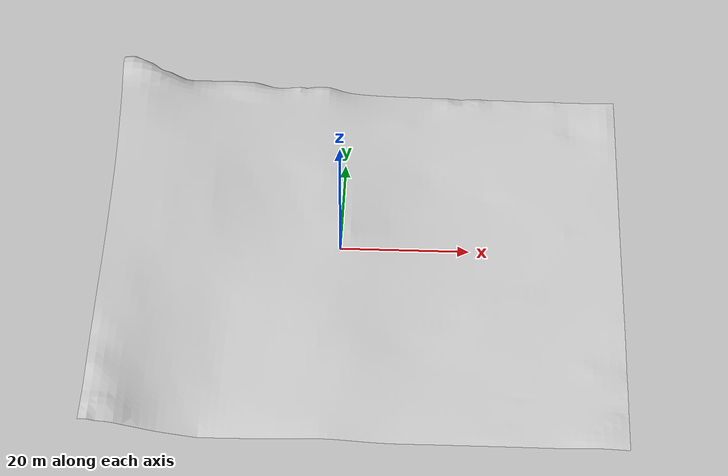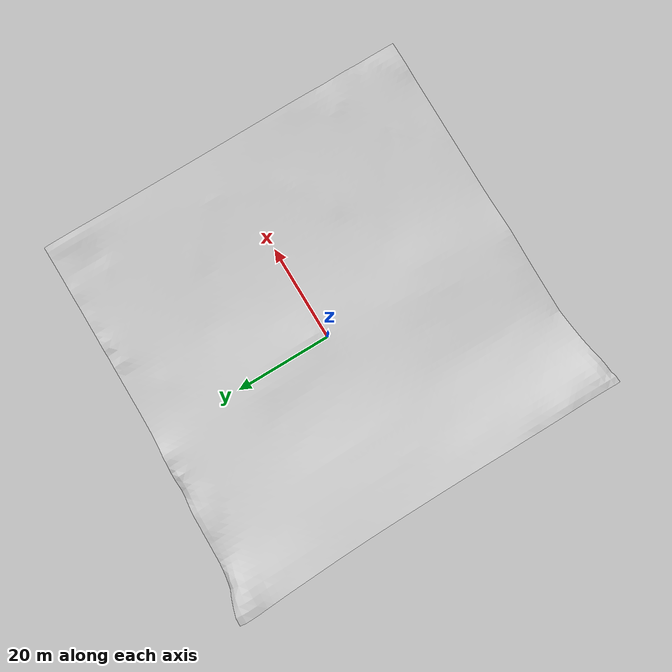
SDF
<sdf version="1.6">
 <world name="default">
  <light name="sun" type="directional">
   <pose>0 0 10 0 -0 0</pose>
   <diffuse>0.8 0.8 0.8 1</diffuse>
   <specular>0.2 0.2 0.2 1</specular>
   <attenuation>
    <range>1000</range>
    <constant>0.9</constant>
    <linear>0.01</linear>
    <quadratic>0.001</quadratic>
   </attenuation>
   <direction>-0.5 0.1 -0.9</direction>
  </light>
  <gravity>0 0 -9.8</gravity>
  <magnetic_field>6e-06 2.3e-05 -4.2e-05</magnetic_field>
  <atmosphere type="adiabatic"/>
  <physics name="default_physics" default="0" type="ode">
   <max_step_size>0.001</max_step_size>
   <real_time_factor>1</real_time_factor>
   <real_time_update_rate>1000</real_time_update_rate>
  </physics>
  <scene><ambient>0.4 0.4 0.4 1</ambient><background>0.7 0.7 0.7 1</background><shadows>1</shadows></scene>
  <spherical_coordinates>
   <surface_model>EARTH_WGS84</surface_model>
   <latitude_deg>0</latitude_deg>
   <longitude_deg>0</longitude_deg>
   <elevation>0</elevation>
   <heading_deg>0</heading_deg>
  </spherical_coordinates>
  <model name="heightmap">
   <static>1</static>
   <pose>2.62336 -1.82954 0 0 -0 0</pose>
   <link name="link">
    <collision name="collision">
     <geometry><mesh><uri>model://heightmap/heightmap_n.dae</uri></mesh></geometry>
    </collision>
    <visual name="visual">
     <geometry><mesh><uri>model://heightmap/heightmap_n.dae</uri></mesh></geometry>
     <material>
      <script>
       <uri>model://heightmap/materials/scripts</uri>
       <uri>model://heightmap/materials/textures</uri>
       <name>heightmap/ground</name>
      </script>
     </material>
    </visual>
   </link>
  </model>
 </world>
</sdf>
